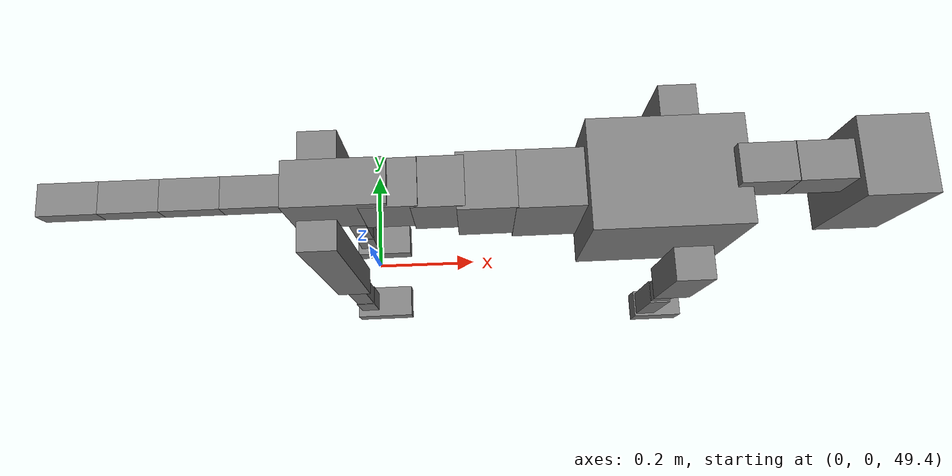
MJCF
<mujoco model="dog">

    <default>
        <joint armature="0.02" stiffness="1" damping="0.2" limited="true"/>
        <geom condim="3" friction="1 0.05 0.05" margin="0.01"/>
        <motor ctrllimited="true" ctrlrange="-1.0 1.0" forcelimited="true" gear="50"/>
    </default>

    <compiler inertiafromgeom="true" angle="radian"/>

    <option timestep="0.016" iterations="50" tolerance="1e-10" solver="Newton" jacobian="dense" cone="pyramidal"/>

    <size nconmax="20000" njmax="60000" nstack="5000000"/>
    <visual>
        <map force="0.1" zfar="30"/>
        <rgba haze="0.15 0.25 0.35 1"/>
        <quality shadowsize="2048"/>
        <global offwidth="800" offheight="800"/>
    </visual>

    <asset>
        <texture type="skybox" builtin="gradient" rgb1="0.3 0.5 0.7" rgb2="0 0 0" width="512" height="512"/>
        <texture name="texplane" type="2d" builtin="checker" rgb1=".2 .3 .4" rgb2=".1 0.15 0.2" width="512" height="512"
                 mark="cross" markrgb=".8 .8 .8"/>
        <texture name="texgeom" type="cube" builtin="flat" mark="cross" width="127" height="1278" rgb1="0.8 0.6 0.4"
                 rgb2="0.8 0.6 0.4" markrgb="1 1 1" random="0.01"/>

        <material name="matplane" reflectance="0.3" texture="texplane" texrepeat="1 1" texuniform="true"/>
        <material name="matgeom" texture="texgeom" texuniform="true" rgba="0.8 0.6 .4 1"/>
    </asset>

    <worldbody>
        <geom name="floor" pos="0 0 0" size="0 0 .25" type="plane" material="matplane" condim="3"/>

        <light directional="false" diffuse=".2 .2 .2" specular="0 0 0" pos="0 0 5" dir="0 0 -1" castshadow="false"/>
        <light mode="targetbodycom" target="torso" directional="false" diffuse=".8 .8 .8" specular="0.3 0.3 0.3"
               pos="0 0 4.0" dir="0 0 -1"/>

        <body name="root" pos="0 0 50">
            <freejoint name="root_1"/>
            <geom type="box" pos="0 0 -0.02" size="0.0774  0.0358  0.063" density="2030"/>

            <body name="spine1" pos="0.054 0 0">
                <joint name="spine1_y" axis="0 1 0" range="0 0.7" limited="true"/>
                <geom type="box" pos="0.02375 0 -0.03" size="0.04375  0.0375  0.05985" density="2030"/>

                <body name="spine2" pos="0.0612 0 0">
                    <joint name="spine2_y" axis="0 1 0" range="-0.15 0.15" limited="true"/>
                    <geom type="box" pos="0.03555  0  -0.04" size="0.04055  0.039  0.06615" density="2030"/>

                    <body name="spine3" pos="0.0730 0 0">
                        <joint name="spine3_y" axis="0 1 0" range="-0.15 0.15" limited="true"/>
                        <geom type="box" pos="0.03555  0  -0.057" size="0.04555  0.0445  0.081" density="2030"/>

                        <body name="spine4" pos="0.0780 0 0">
                            <joint name="spine4_y" axis="0 1 0" range="-0.15 0.15" limited="true"/>
                            <geom type="box" pos="0.05265  0  -0.07" size="0.05265  0.045  0.09135" density="2030"/>

                            <body name="torso" pos="0.1082 0 0">
                                <joint name="torso_y" axis="0 1 0" range="-0.15 0.15" limited="true"/>
                                <geom type="box" pos="0.11925  0  -0.085" size="0.11925  0.085  0.11745"
                                      density="2030"/>

                                <body name="neck1" pos="0.2160  0   0.0180">
                                    <joint name="neck1_y" axis="0 1 0" range="-1.2  -1" limited="true"/>
                                    <geom type="box" pos="0.0423  0  0" size="0.0423  0.03  0.036" density="2325"/>

                                    <body name="neck2" pos="0.0853  0  0">
                                        <joint name="neck2_y" axis="0 1 0" range="0.1  0" limited="true"/>
                                        <geom type="box" pos="0.0423  0  0" size="0.0423  0.03  0.036" density="2325"/>

                                        <body name="head" pos="0.0853  0  0">
                                            <joint name="head_y" axis="0 1 0" range="-0.3  -0.2" limited="true"/>
                                            <geom type="box" pos="0.0531  0  -0.055" size="0.0531  0.06  0.1044"
                                                  density="4030"/>

                                        </body>
                                    </body>
                                </body>

                                <body name="front_shoulder" pos="0.156  0   -0.0480">
                                    <joint name="front_shoulder_y" axis="0 1 0" range="-1 1.5" limited="true"/>
                                    <geom type="box" pos="0 0.13 -0.0600" size="0.0301  0.0257  0.0866" density="1158"/>
                                    <geom type="box" pos="0 -0.13 -0.0600" size="0.0301  0.0257  0.0866"
                                          density="1158"/>

                                    <body name="front_elbow" pos="0  0  -0.1200">
                                        <joint name="front_elbow_y" axis="0 1 0" range="-2 0" limited="true"/>
                                        <geom type="box" pos="0 0.13 -0.0646" size="0.0162  0.0165  0.0646"
                                              density="1081"/>
                                        <geom type="box" pos="0 -0.13 -0.0646" size="0.0162  0.0165  0.0646"
                                              density="1081"/>

                                        <body name="front_wrist" pos="0  0  -0.1292">
                                            <joint name="front_wrist_y" axis="0 1 0" range="-0.2 0" limited="true"/>
                                            <geom type="box" pos="0 0.13 -0.0726" size="0.0174  0.0193  0.0858"
                                                  density="1664"/>
                                            <geom type="box" pos="0 -0.13 -0.0726" size="0.0174  0.0193  0.0858"
                                                  density="1664"/>

                                            <body name="front_finger_end" pos="0  0  -0.1452">
                                                <joint name="front_finger_y" axis="0 1 0" range="-0.4 1"
                                                       limited="true"/>
                                                <geom type="box" pos="0.0239  0.13  -0.0123"
                                                      size="0.0438  0.0239  0.0273" density="1515"/>
                                                <geom type="box" pos="0.0239  -0.13  -0.0123"
                                                      size="0.0438  0.0239  0.0273" density="1515"/>

                                            </body>

                                        </body>
                                    </body>
                                </body>

                            </body>
                        </body>
                    </body>
                </body>
            </body>

            <body name="back_hip" pos="-0.03 0 -0.018">
                <joint name="back_hip_y" axis="0 1 0" range="-1.5 0.3" limited="true"/>
                <geom type="box" pos="0 0.07 -0.1763" size="0.0300  0.0235  0.1991" density="1154"/>
                <geom type="box" pos="0 -0.07 -0.1763" size="0.0300  0.0235  0.1991" density="1154"/>

                <body name="back_knee" pos="0  0  -0.3526">
                    <joint name="back_knee_y" axis="0 1 0" range="0 2.8" limited="true"/>
                    <geom type="box" pos="0 0.07 -0.0995" size="0.0173  0.0170  0.1150" density="1227"/>
                    <geom type="box" pos="0 -0.07 -0.0995" size="0.0173  0.0170  0.1150" density="1227"/>

                    <body name="back_ankle" pos="0  0  -0.1989">
                        <joint name="back_ankle_y" axis="0 1 0" range="-2.2 0" limited="true"/>
                        <geom type="box" pos="0 0.07 -0.0478" size="0.0183  0.0183  0.0590" density="1284"/>
                        <geom type="box" pos="0 -0.07 -0.0478" size="0.0183  0.0183  0.0590" density="1284"/>

                        <body name="back_toe_end" pos="0  0  -0.0956">
                            <joint name="back_toe_y" axis="0 1 0" range="-0.4 1" limited="true"/>
                            <geom type="box" pos="0.0317  0.07  -0.0088" size="0.0582  0.0317  0.0238" density="1515"/>
                            <geom type="box" pos="0.0317  -0.07  -0.0088" size="0.0582  0.0317  0.0238" density="1515"/>

                        </body>
                    </body>
                </body>
            </body>

            <body name="tail1" pos="-0.074 0 -0.006">
                <joint name="tail1_y" axis="0 1 0" range="-0.2 0.2" limited="true"/>
                <geom type="box" pos="-0.0536  0  0" size="0.045  0.025  0.0175" density="1587"/>

                <body name="tail2" pos="-0.09 0 0">
                    <joint name="tail2_y" axis="0 1 0" range="-0.2 0.2" limited="true"/>
                    <geom type="box" pos="-0.0536  0  0" size="0.045  0.025  0.0175" density="1587"/>

                    <body name="tail3" pos="-0.09 0 0">
                        <joint name="tail3_y" axis="0 1 0" range="-0.2 0.2" limited="true"/>
                        <geom type="box" pos="-0.0536  0  0" size="0.045  0.025  0.0175" density="1587"/>

                        <body name="tail4" pos="-0.09 0 0">
                            <joint name="tail4_y" axis="0 1 0" range="-0.2 0.2" limited="true"/>
                            <geom type="box" pos="-0.0536  0  0" size="0.045  0.025  0.0175" density="1587"/>

                        </body>
                    </body>
                </body>
            </body>
        </body>
    </worldbody>

    <actuator>
        <motor joint="spine1_y" forcerange="-150 150     "/>
        <motor joint="spine2_y" forcerange="-150 150     "/>
        <motor joint="spine3_y" forcerange="-150 150     "/>
        <motor joint="spine4_y" forcerange="-150 150     "/>
        <motor joint="torso_y" forcerange="-150 150     "/>
        <motor joint="neck1_y" forcerange="-100 100       "/>
        <motor joint="neck2_y" forcerange="-100 100       "/>
        <motor joint="head_y" forcerange="-150 150       "/>
        <motor joint="front_shoulder_y" forcerange="-166.70 104.56"/>
        <motor joint="front_elbow_y" forcerange="-103.72 116.61"/>
        <motor joint="front_wrist_y" forcerange="-51.43 103.28"/>
        <motor joint="front_finger_y" forcerange="-65.07 22.28"/>
        <motor joint="back_hip_y" forcerange="-227.96 285.94"/>
        <motor joint="back_knee_y" forcerange="-212.39 235.43"/>
        <motor joint="back_angle_y" forcerange="-111.47 80.68"/>
        <motor joint="back_toe_y" forcerange="-70.34 103.58"/>
        <motor joint="tail1_y" forcerange="-50 50     "/>
        <motor joint="tail2_y" forcerange="-50 50     "/>
        <motor joint="tail3_y" forcerange="-50 50     "/>
        <motor joint="tail4_y" forcerange="-50 50     "/>
    </actuator>
</mujoco>
